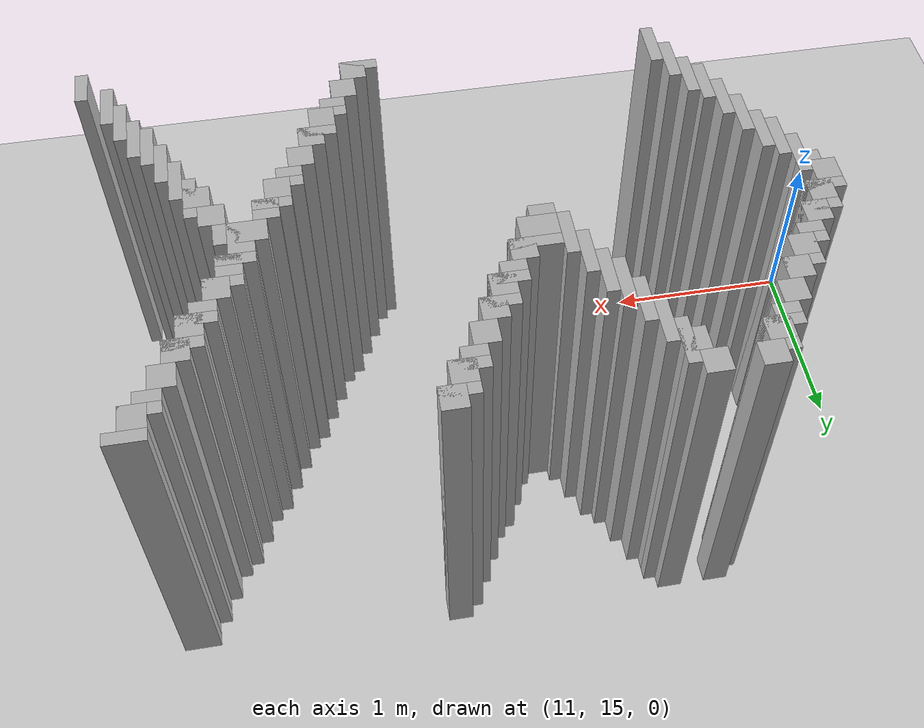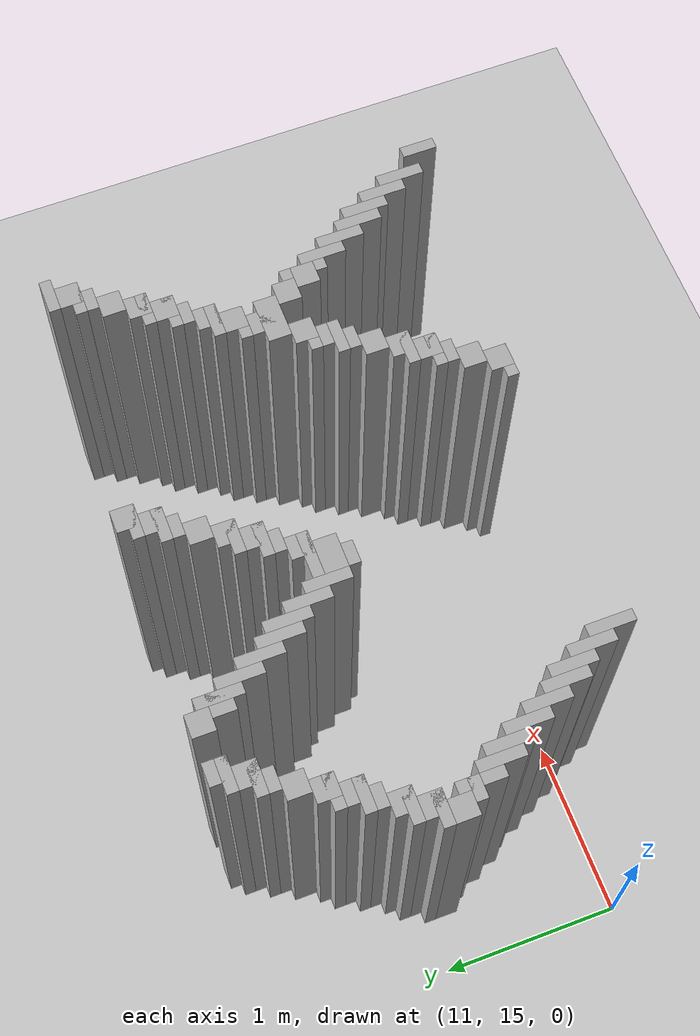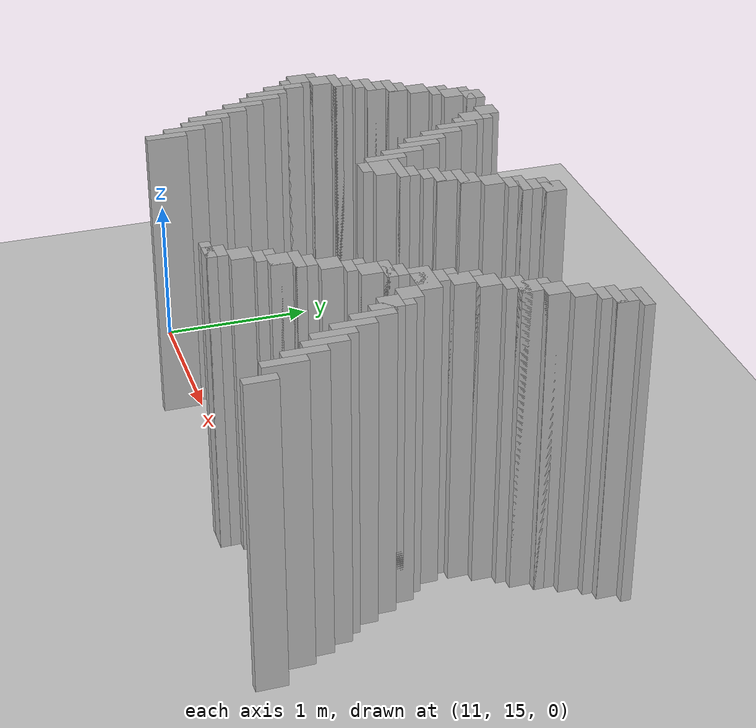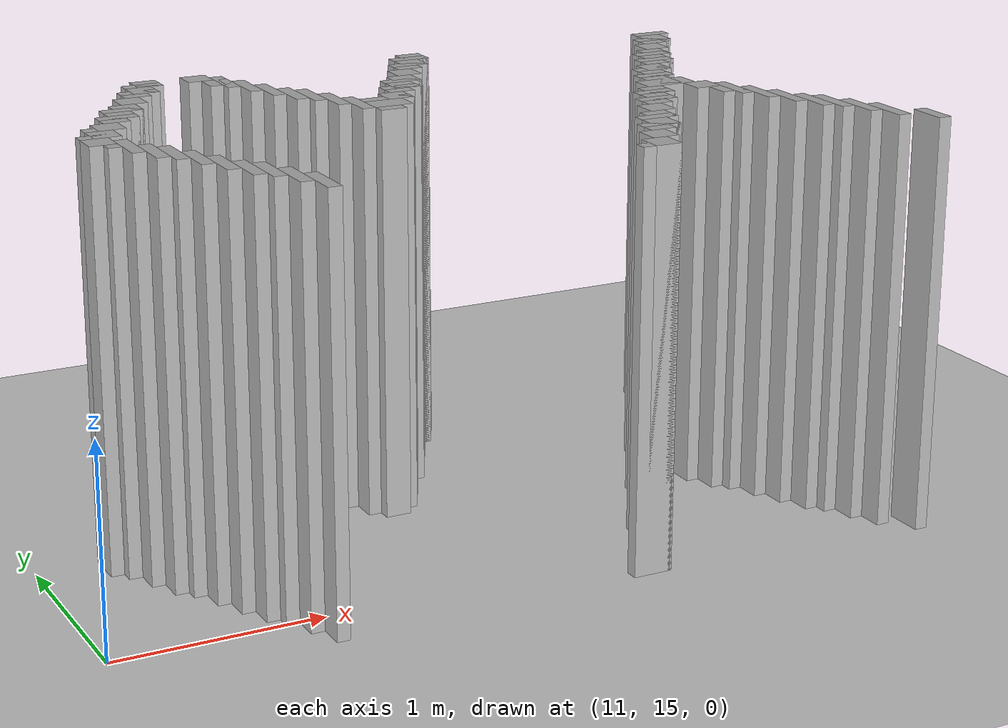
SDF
<sdf version="1.6">
 <world name="slam_world">
  <model name="ground_plane">
   <static>true</static>
   <link name="link">
    <collision name="collision">
     <geometry><plane><normal>0 0 1</normal><size>100 100</size></plane></geometry>
    </collision>
    <visual name="visual">
     <geometry><plane><normal>0 0 1</normal><size>100 100</size></plane></geometry>
     <material>
      <ambient>0.8 0.8 0.8 1</ambient>
      <diffuse>0.8 0.8 0.8 1</diffuse>
      <specular>0.8 0.8 0.8 1</specular>
     </material>
    </visual>
   </link>
  </model>
  <model name="wall_692">
   <static>true</static>
   <pose>11.936170212765957 16.914893617021274 1.0 0 0 0</pose>
   <link name="link">
    <collision name="collision">
     <geometry><box><size>0.1276595744680851 0.1276595744680851 2.0</size></box></geometry>
    </collision>
    <visual name="visual">
     <geometry><box><size>0.1276595744680851 0.1276595744680851 2.0</size></box></geometry>
     <material><ambient>0.5 0.5 0.5 1</ambient><diffuse>0.7 0.7 0.7 1</diffuse></material>
    </visual>
   </link>
  </model>
  <model name="wall_693">
   <static>true</static>
   <pose>12.191489361702127 16.914893617021274 1.0 0 0 0</pose>
   <link name="link">
    <collision name="collision">
     <geometry><box><size>0.1276595744680851 0.1276595744680851 2.0</size></box></geometry>
    </collision>
    <visual name="visual">
     <geometry><box><size>0.1276595744680851 0.1276595744680851 2.0</size></box></geometry>
     <material><ambient>0.5 0.5 0.5 1</ambient><diffuse>0.7 0.7 0.7 1</diffuse></material>
    </visual>
   </link>
  </model>
  <model name="wall_694">
   <static>true</static>
   <pose>13.340425531914892 16.914893617021274 1.0 0 0 0</pose>
   <link name="link">
    <collision name="collision">
     <geometry><box><size>0.1276595744680851 0.1276595744680851 2.0</size></box></geometry>
    </collision>
    <visual name="visual">
     <geometry><box><size>0.1276595744680851 0.1276595744680851 2.0</size></box></geometry>
     <material><ambient>0.5 0.5 0.5 1</ambient><diffuse>0.7 0.7 0.7 1</diffuse></material>
    </visual>
   </link>
  </model>
  <model name="wall_702">
   <static>true</static>
   <pose>11.904255319148936 16.882978723404253 1.0 0 0 0</pose>
   <link name="link">
    <collision name="collision">
     <geometry><box><size>0.19148936170212766 0.06382978723404255 2.0</size></box></geometry>
    </collision>
    <visual name="visual">
     <geometry><box><size>0.19148936170212766 0.06382978723404255 2.0</size></box></geometry>
     <material><ambient>0.5 0.5 0.5 1</ambient><diffuse>0.7 0.7 0.7 1</diffuse></material>
    </visual>
   </link>
  </model>
  <model name="wall_703">
   <static>true</static>
   <pose>12.287234042553191 16.78723404255319 1.0 0 0 0</pose>
   <link name="link">
    <collision name="collision">
     <geometry><box><size>0.06382978723404255 0.2553191489361702 2.0</size></box></geometry>
    </collision>
    <visual name="visual">
     <geometry><box><size>0.06382978723404255 0.2553191489361702 2.0</size></box></geometry>
     <material><ambient>0.5 0.5 0.5 1</ambient><diffuse>0.7 0.7 0.7 1</diffuse></material>
    </visual>
   </link>
  </model>
  <model name="wall_704">
   <static>true</static>
   <pose>13.308510638297872 16.882978723404253 1.0 0 0 0</pose>
   <link name="link">
    <collision name="collision">
     <geometry><box><size>0.19148936170212766 0.06382978723404255 2.0</size></box></geometry>
    </collision>
    <visual name="visual">
     <geometry><box><size>0.19148936170212766 0.06382978723404255 2.0</size></box></geometry>
     <material><ambient>0.5 0.5 0.5 1</ambient><diffuse>0.7 0.7 0.7 1</diffuse></material>
    </visual>
   </link>
  </model>
  <model name="wall_705">
   <static>true</static>
   <pose>14.712765957446807 16.882978723404253 1.0 0 0 0</pose>
   <link name="link">
    <collision name="collision">
     <geometry><box><size>0.19148936170212766 0.06382978723404255 2.0</size></box></geometry>
    </collision>
    <visual name="visual">
     <geometry><box><size>0.19148936170212766 0.06382978723404255 2.0</size></box></geometry>
     <material><ambient>0.5 0.5 0.5 1</ambient><diffuse>0.7 0.7 0.7 1</diffuse></material>
    </visual>
   </link>
  </model>
  <model name="wall_712">
   <static>true</static>
   <pose>11.872340425531913 16.78723404255319 1.0 0 0 0</pose>
   <link name="link">
    <collision name="collision">
     <geometry><box><size>0.1276595744680851 0.1276595744680851 2.0</size></box></geometry>
    </collision>
    <visual name="visual">
     <geometry><box><size>0.1276595744680851 0.1276595744680851 2.0</size></box></geometry>
     <material><ambient>0.5 0.5 0.5 1</ambient><diffuse>0.7 0.7 0.7 1</diffuse></material>
    </visual>
   </link>
  </model>
  <model name="wall_713">
   <static>true</static>
   <pose>12.25531914893617 16.78723404255319 1.0 0 0 0</pose>
   <link name="link">
    <collision name="collision">
     <geometry><box><size>0.1276595744680851 0.1276595744680851 2.0</size></box></geometry>
    </collision>
    <visual name="visual">
     <geometry><box><size>0.1276595744680851 0.1276595744680851 2.0</size></box></geometry>
     <material><ambient>0.5 0.5 0.5 1</ambient><diffuse>0.7 0.7 0.7 1</diffuse></material>
    </visual>
   </link>
  </model>
  <model name="wall_714">
   <static>true</static>
   <pose>13.27659574468085 16.78723404255319 1.0 0 0 0</pose>
   <link name="link">
    <collision name="collision">
     <geometry><box><size>0.1276595744680851 0.1276595744680851 2.0</size></box></geometry>
    </collision>
    <visual name="visual">
     <geometry><box><size>0.1276595744680851 0.1276595744680851 2.0</size></box></geometry>
     <material><ambient>0.5 0.5 0.5 1</ambient><diffuse>0.7 0.7 0.7 1</diffuse></material>
    </visual>
   </link>
  </model>
  <model name="wall_715">
   <static>true</static>
   <pose>14.680851063829786 16.78723404255319 1.0 0 0 0</pose>
   <link name="link">
    <collision name="collision">
     <geometry><box><size>0.1276595744680851 0.1276595744680851 2.0</size></box></geometry>
    </collision>
    <visual name="visual">
     <geometry><box><size>0.1276595744680851 0.1276595744680851 2.0</size></box></geometry>
     <material><ambient>0.5 0.5 0.5 1</ambient><diffuse>0.7 0.7 0.7 1</diffuse></material>
    </visual>
   </link>
  </model>
  <model name="wall_722">
   <static>true</static>
   <pose>11.840425531914892 16.75531914893617 1.0 0 0 0</pose>
   <link name="link">
    <collision name="collision">
     <geometry><box><size>0.19148936170212766 0.06382978723404255 2.0</size></box></geometry>
    </collision>
    <visual name="visual">
     <geometry><box><size>0.19148936170212766 0.06382978723404255 2.0</size></box></geometry>
     <material><ambient>0.5 0.5 0.5 1</ambient><diffuse>0.7 0.7 0.7 1</diffuse></material>
    </visual>
   </link>
  </model>
  <model name="wall_723">
   <static>true</static>
   <pose>12.351063829787233 16.659574468085104 1.0 0 0 0</pose>
   <link name="link">
    <collision name="collision">
     <geometry><box><size>0.06382978723404255 0.2553191489361702 2.0</size></box></geometry>
    </collision>
    <visual name="visual">
     <geometry><box><size>0.06382978723404255 0.2553191489361702 2.0</size></box></geometry>
     <material><ambient>0.5 0.5 0.5 1</ambient><diffuse>0.7 0.7 0.7 1</diffuse></material>
    </visual>
   </link>
  </model>
  <model name="wall_724">
   <static>true</static>
   <pose>13.244680851063828 16.75531914893617 1.0 0 0 0</pose>
   <link name="link">
    <collision name="collision">
     <geometry><box><size>0.19148936170212766 0.06382978723404255 2.0</size></box></geometry>
    </collision>
    <visual name="visual">
     <geometry><box><size>0.19148936170212766 0.06382978723404255 2.0</size></box></geometry>
     <material><ambient>0.5 0.5 0.5 1</ambient><diffuse>0.7 0.7 0.7 1</diffuse></material>
    </visual>
   </link>
  </model>
  <model name="wall_725">
   <static>true</static>
   <pose>14.648936170212766 16.75531914893617 1.0 0 0 0</pose>
   <link name="link">
    <collision name="collision">
     <geometry><box><size>0.19148936170212766 0.06382978723404255 2.0</size></box></geometry>
    </collision>
    <visual name="visual">
     <geometry><box><size>0.19148936170212766 0.06382978723404255 2.0</size></box></geometry>
     <material><ambient>0.5 0.5 0.5 1</ambient><diffuse>0.7 0.7 0.7 1</diffuse></material>
    </visual>
   </link>
  </model>
  <model name="wall_729">
   <static>true</static>
   <pose>11.808510638297872 16.691489361702125 1.0 0 0 0</pose>
   <link name="link">
    <collision name="collision">
     <geometry><box><size>0.1276595744680851 0.06382978723404255 2.0</size></box></geometry>
    </collision>
    <visual name="visual">
     <geometry><box><size>0.1276595744680851 0.06382978723404255 2.0</size></box></geometry>
     <material><ambient>0.5 0.5 0.5 1</ambient><diffuse>0.7 0.7 0.7 1</diffuse></material>
    </visual>
   </link>
  </model>
  <model name="wall_730">
   <static>true</static>
   <pose>13.212765957446807 16.691489361702125 1.0 0 0 0</pose>
   <link name="link">
    <collision name="collision">
     <geometry><box><size>0.1276595744680851 0.06382978723404255 2.0</size></box></geometry>
    </collision>
    <visual name="visual">
     <geometry><box><size>0.1276595744680851 0.06382978723404255 2.0</size></box></geometry>
     <material><ambient>0.5 0.5 0.5 1</ambient><diffuse>0.7 0.7 0.7 1</diffuse></material>
    </visual>
   </link>
  </model>
  <model name="wall_731">
   <static>true</static>
   <pose>14.617021276595743 16.691489361702125 1.0 0 0 0</pose>
   <link name="link">
    <collision name="collision">
     <geometry><box><size>0.1276595744680851 0.06382978723404255 2.0</size></box></geometry>
    </collision>
    <visual name="visual">
     <geometry><box><size>0.1276595744680851 0.06382978723404255 2.0</size></box></geometry>
     <material><ambient>0.5 0.5 0.5 1</ambient><diffuse>0.7 0.7 0.7 1</diffuse></material>
    </visual>
   </link>
  </model>
  <model name="wall_738">
   <static>true</static>
   <pose>11.744680851063828 16.595744680851062 1.0 0 0 0</pose>
   <link name="link">
    <collision name="collision">
     <geometry><box><size>0.1276595744680851 0.1276595744680851 2.0</size></box></geometry>
    </collision>
    <visual name="visual">
     <geometry><box><size>0.1276595744680851 0.1276595744680851 2.0</size></box></geometry>
     <material><ambient>0.5 0.5 0.5 1</ambient><diffuse>0.7 0.7 0.7 1</diffuse></material>
    </visual>
   </link>
  </model>
  <model name="wall_739">
   <static>true</static>
   <pose>12.414893617021276 16.53191489361702 1.0 0 0 0</pose>
   <link name="link">
    <collision name="collision">
     <geometry><box><size>0.06382978723404255 0.2553191489361702 2.0</size></box></geometry>
    </collision>
    <visual name="visual">
     <geometry><box><size>0.06382978723404255 0.2553191489361702 2.0</size></box></geometry>
     <material><ambient>0.5 0.5 0.5 1</ambient><diffuse>0.7 0.7 0.7 1</diffuse></material>
    </visual>
   </link>
  </model>
  <model name="wall_740">
   <static>true</static>
   <pose>13.148936170212766 16.595744680851062 1.0 0 0 0</pose>
   <link name="link">
    <collision name="collision">
     <geometry><box><size>0.1276595744680851 0.1276595744680851 2.0</size></box></geometry>
    </collision>
    <visual name="visual">
     <geometry><box><size>0.1276595744680851 0.1276595744680851 2.0</size></box></geometry>
     <material><ambient>0.5 0.5 0.5 1</ambient><diffuse>0.7 0.7 0.7 1</diffuse></material>
    </visual>
   </link>
  </model>
  <model name="wall_741">
   <static>true</static>
   <pose>14.553191489361701 16.595744680851062 1.0 0 0 0</pose>
   <link name="link">
    <collision name="collision">
     <geometry><box><size>0.1276595744680851 0.1276595744680851 2.0</size></box></geometry>
    </collision>
    <visual name="visual">
     <geometry><box><size>0.1276595744680851 0.1276595744680851 2.0</size></box></geometry>
     <material><ambient>0.5 0.5 0.5 1</ambient><diffuse>0.7 0.7 0.7 1</diffuse></material>
    </visual>
   </link>
  </model>
  <model name="wall_748">
   <static>true</static>
   <pose>11.680851063829786 16.46808510638298 1.0 0 0 0</pose>
   <link name="link">
    <collision name="collision">
     <geometry><box><size>0.1276595744680851 0.1276595744680851 2.0</size></box></geometry>
    </collision>
    <visual name="visual">
     <geometry><box><size>0.1276595744680851 0.1276595744680851 2.0</size></box></geometry>
     <material><ambient>0.5 0.5 0.5 1</ambient><diffuse>0.7 0.7 0.7 1</diffuse></material>
    </visual>
   </link>
  </model>
  <model name="wall_749">
   <static>true</static>
   <pose>12.478723404255318 16.404255319148934 1.0 0 0 0</pose>
   <link name="link">
    <collision name="collision">
     <geometry><box><size>0.06382978723404255 0.2553191489361702 2.0</size></box></geometry>
    </collision>
    <visual name="visual">
     <geometry><box><size>0.06382978723404255 0.2553191489361702 2.0</size></box></geometry>
     <material><ambient>0.5 0.5 0.5 1</ambient><diffuse>0.7 0.7 0.7 1</diffuse></material>
    </visual>
   </link>
  </model>
  <model name="wall_750">
   <static>true</static>
   <pose>13.085106382978722 16.46808510638298 1.0 0 0 0</pose>
   <link name="link">
    <collision name="collision">
     <geometry><box><size>0.1276595744680851 0.1276595744680851 2.0</size></box></geometry>
    </collision>
    <visual name="visual">
     <geometry><box><size>0.1276595744680851 0.1276595744680851 2.0</size></box></geometry>
     <material><ambient>0.5 0.5 0.5 1</ambient><diffuse>0.7 0.7 0.7 1</diffuse></material>
    </visual>
   </link>
  </model>
  <model name="wall_751">
   <static>true</static>
   <pose>14.489361702127658 16.46808510638298 1.0 0 0 0</pose>
   <link name="link">
    <collision name="collision">
     <geometry><box><size>0.1276595744680851 0.1276595744680851 2.0</size></box></geometry>
    </collision>
    <visual name="visual">
     <geometry><box><size>0.1276595744680851 0.1276595744680851 2.0</size></box></geometry>
     <material><ambient>0.5 0.5 0.5 1</ambient><diffuse>0.7 0.7 0.7 1</diffuse></material>
    </visual>
   </link>
  </model>
  <model name="wall_758">
   <static>true</static>
   <pose>11.648936170212766 16.436170212765955 1.0 0 0 0</pose>
   <link name="link">
    <collision name="collision">
     <geometry><box><size>0.19148936170212766 0.06382978723404255 2.0</size></box></geometry>
    </collision>
    <visual name="visual">
     <geometry><box><size>0.19148936170212766 0.06382978723404255 2.0</size></box></geometry>
     <material><ambient>0.5 0.5 0.5 1</ambient><diffuse>0.7 0.7 0.7 1</diffuse></material>
    </visual>
   </link>
  </model>
  <model name="wall_759">
   <static>true</static>
   <pose>12.542553191489361 16.340425531914892 1.0 0 0 0</pose>
   <link name="link">
    <collision name="collision">
     <geometry><box><size>0.06382978723404255 0.2553191489361702 2.0</size></box></geometry>
    </collision>
    <visual name="visual">
     <geometry><box><size>0.06382978723404255 0.2553191489361702 2.0</size></box></geometry>
     <material><ambient>0.5 0.5 0.5 1</ambient><diffuse>0.7 0.7 0.7 1</diffuse></material>
    </visual>
   </link>
  </model>
  <model name="wall_760">
   <static>true</static>
   <pose>13.053191489361701 16.436170212765955 1.0 0 0 0</pose>
   <link name="link">
    <collision name="collision">
     <geometry><box><size>0.19148936170212766 0.06382978723404255 2.0</size></box></geometry>
    </collision>
    <visual name="visual">
     <geometry><box><size>0.19148936170212766 0.06382978723404255 2.0</size></box></geometry>
     <material><ambient>0.5 0.5 0.5 1</ambient><diffuse>0.7 0.7 0.7 1</diffuse></material>
    </visual>
   </link>
  </model>
  <model name="wall_761">
   <static>true</static>
   <pose>14.457446808510637 16.436170212765955 1.0 0 0 0</pose>
   <link name="link">
    <collision name="collision">
     <geometry><box><size>0.19148936170212766 0.06382978723404255 2.0</size></box></geometry>
    </collision>
    <visual name="visual">
     <geometry><box><size>0.19148936170212766 0.06382978723404255 2.0</size></box></geometry>
     <material><ambient>0.5 0.5 0.5 1</ambient><diffuse>0.7 0.7 0.7 1</diffuse></material>
    </visual>
   </link>
  </model>
  <model name="wall_765">
   <static>true</static>
   <pose>11.617021276595743 16.340425531914892 1.0 0 0 0</pose>
   <link name="link">
    <collision name="collision">
     <geometry><box><size>0.1276595744680851 0.1276595744680851 2.0</size></box></geometry>
    </collision>
    <visual name="visual">
     <geometry><box><size>0.1276595744680851 0.1276595744680851 2.0</size></box></geometry>
     <material><ambient>0.5 0.5 0.5 1</ambient><diffuse>0.7 0.7 0.7 1</diffuse></material>
    </visual>
   </link>
  </model>
  <model name="wall_766">
   <static>true</static>
   <pose>13.02127659574468 16.340425531914892 1.0 0 0 0</pose>
   <link name="link">
    <collision name="collision">
     <geometry><box><size>0.1276595744680851 0.1276595744680851 2.0</size></box></geometry>
    </collision>
    <visual name="visual">
     <geometry><box><size>0.1276595744680851 0.1276595744680851 2.0</size></box></geometry>
     <material><ambient>0.5 0.5 0.5 1</ambient><diffuse>0.7 0.7 0.7 1</diffuse></material>
    </visual>
   </link>
  </model>
  <model name="wall_767">
   <static>true</static>
   <pose>14.425531914893616 16.340425531914892 1.0 0 0 0</pose>
   <link name="link">
    <collision name="collision">
     <geometry><box><size>0.1276595744680851 0.1276595744680851 2.0</size></box></geometry>
    </collision>
    <visual name="visual">
     <geometry><box><size>0.1276595744680851 0.1276595744680851 2.0</size></box></geometry>
     <material><ambient>0.5 0.5 0.5 1</ambient><diffuse>0.7 0.7 0.7 1</diffuse></material>
    </visual>
   </link>
  </model>
  <model name="wall_774">
   <static>true</static>
   <pose>11.585106382978722 16.30851063829787 1.0 0 0 0</pose>
   <link name="link">
    <collision name="collision">
     <geometry><box><size>0.19148936170212766 0.06382978723404255 2.0</size></box></geometry>
    </collision>
    <visual name="visual">
     <geometry><box><size>0.19148936170212766 0.06382978723404255 2.0</size></box></geometry>
     <material><ambient>0.5 0.5 0.5 1</ambient><diffuse>0.7 0.7 0.7 1</diffuse></material>
    </visual>
   </link>
  </model>
  <model name="wall_775">
   <static>true</static>
   <pose>12.606382978723403 16.212765957446805 1.0 0 0 0</pose>
   <link name="link">
    <collision name="collision">
     <geometry><box><size>0.06382978723404255 0.2553191489361702 2.0</size></box></geometry>
    </collision>
    <visual name="visual">
     <geometry><box><size>0.06382978723404255 0.2553191489361702 2.0</size></box></geometry>
     <material><ambient>0.5 0.5 0.5 1</ambient><diffuse>0.7 0.7 0.7 1</diffuse></material>
    </visual>
   </link>
  </model>
  <model name="wall_776">
   <static>true</static>
   <pose>12.989361702127658 16.30851063829787 1.0 0 0 0</pose>
   <link name="link">
    <collision name="collision">
     <geometry><box><size>0.19148936170212766 0.06382978723404255 2.0</size></box></geometry>
    </collision>
    <visual name="visual">
     <geometry><box><size>0.19148936170212766 0.06382978723404255 2.0</size></box></geometry>
     <material><ambient>0.5 0.5 0.5 1</ambient><diffuse>0.7 0.7 0.7 1</diffuse></material>
    </visual>
   </link>
  </model>
  <model name="wall_777">
   <static>true</static>
   <pose>14.393617021276595 16.30851063829787 1.0 0 0 0</pose>
   <link name="link">
    <collision name="collision">
     <geometry><box><size>0.19148936170212766 0.06382978723404255 2.0</size></box></geometry>
    </collision>
    <visual name="visual">
     <geometry><box><size>0.19148936170212766 0.06382978723404255 2.0</size></box></geometry>
     <material><ambient>0.5 0.5 0.5 1</ambient><diffuse>0.7 0.7 0.7 1</diffuse></material>
    </visual>
   </link>
  </model>
  <model name="wall_781">
   <static>true</static>
   <pose>11.553191489361701 16.24468085106383 1.0 0 0 0</pose>
   <link name="link">
    <collision name="collision">
     <geometry><box><size>0.1276595744680851 0.06382978723404255 2.0</size></box></geometry>
    </collision>
    <visual name="visual">
     <geometry><box><size>0.1276595744680851 0.06382978723404255 2.0</size></box></geometry>
     <material><ambient>0.5 0.5 0.5 1</ambient><diffuse>0.7 0.7 0.7 1</diffuse></material>
    </visual>
   </link>
  </model>
  <model name="wall_782">
   <static>true</static>
   <pose>12.957446808510637 16.24468085106383 1.0 0 0 0</pose>
   <link name="link">
    <collision name="collision">
     <geometry><box><size>0.1276595744680851 0.06382978723404255 2.0</size></box></geometry>
    </collision>
    <visual name="visual">
     <geometry><box><size>0.1276595744680851 0.06382978723404255 2.0</size></box></geometry>
     <material><ambient>0.5 0.5 0.5 1</ambient><diffuse>0.7 0.7 0.7 1</diffuse></material>
    </visual>
   </link>
  </model>
  <model name="wall_783">
   <static>true</static>
   <pose>14.361702127659573 16.24468085106383 1.0 0 0 0</pose>
   <link name="link">
    <collision name="collision">
     <geometry><box><size>0.1276595744680851 0.06382978723404255 2.0</size></box></geometry>
    </collision>
    <visual name="visual">
     <geometry><box><size>0.1276595744680851 0.06382978723404255 2.0</size></box></geometry>
     <material><ambient>0.5 0.5 0.5 1</ambient><diffuse>0.7 0.7 0.7 1</diffuse></material>
    </visual>
   </link>
  </model>
  <model name="wall_790">
   <static>true</static>
   <pose>11.489361702127658 16.148936170212764 1.0 0 0 0</pose>
   <link name="link">
    <collision name="collision">
     <geometry><box><size>0.1276595744680851 0.1276595744680851 2.0</size></box></geometry>
    </collision>
    <visual name="visual">
     <geometry><box><size>0.1276595744680851 0.1276595744680851 2.0</size></box></geometry>
     <material><ambient>0.5 0.5 0.5 1</ambient><diffuse>0.7 0.7 0.7 1</diffuse></material>
    </visual>
   </link>
  </model>
  <model name="wall_791">
   <static>true</static>
   <pose>12.670212765957446 16.085106382978722 1.0 0 0 0</pose>
   <link name="link">
    <collision name="collision">
     <geometry><box><size>0.06382978723404255 0.2553191489361702 2.0</size></box></geometry>
    </collision>
    <visual name="visual">
     <geometry><box><size>0.06382978723404255 0.2553191489361702 2.0</size></box></geometry>
     <material><ambient>0.5 0.5 0.5 1</ambient><diffuse>0.7 0.7 0.7 1</diffuse></material>
    </visual>
   </link>
  </model>
  <model name="wall_792">
   <static>true</static>
   <pose>12.893617021276595 16.148936170212764 1.0 0 0 0</pose>
   <link name="link">
    <collision name="collision">
     <geometry><box><size>0.1276595744680851 0.1276595744680851 2.0</size></box></geometry>
    </collision>
    <visual name="visual">
     <geometry><box><size>0.1276595744680851 0.1276595744680851 2.0</size></box></geometry>
     <material><ambient>0.5 0.5 0.5 1</ambient><diffuse>0.7 0.7 0.7 1</diffuse></material>
    </visual>
   </link>
  </model>
  <model name="wall_793">
   <static>true</static>
   <pose>14.297872340425531 16.148936170212764 1.0 0 0 0</pose>
   <link name="link">
    <collision name="collision">
     <geometry><box><size>0.1276595744680851 0.1276595744680851 2.0</size></box></geometry>
    </collision>
    <visual name="visual">
     <geometry><box><size>0.1276595744680851 0.1276595744680851 2.0</size></box></geometry>
     <material><ambient>0.5 0.5 0.5 1</ambient><diffuse>0.7 0.7 0.7 1</diffuse></material>
    </visual>
   </link>
  </model>
  <model name="wall_800">
   <static>true</static>
   <pose>11.457446808510637 16.117021276595743 1.0 0 0 0</pose>
   <link name="link">
    <collision name="collision">
     <geometry><box><size>0.19148936170212766 0.06382978723404255 2.0</size></box></geometry>
    </collision>
    <visual name="visual">
     <geometry><box><size>0.19148936170212766 0.06382978723404255 2.0</size></box></geometry>
     <material><ambient>0.5 0.5 0.5 1</ambient><diffuse>0.7 0.7 0.7 1</diffuse></material>
    </visual>
   </link>
  </model>
  <model name="wall_801">
   <static>true</static>
   <pose>12.829787234042552 16.117021276595743 1.0 0 0 0</pose>
   <link name="link">
    <collision name="collision">
     <geometry><box><size>0.2553191489361702 0.06382978723404255 2.0</size></box></geometry>
    </collision>
    <visual name="visual">
     <geometry><box><size>0.2553191489361702 0.06382978723404255 2.0</size></box></geometry>
     <material><ambient>0.5 0.5 0.5 1</ambient><diffuse>0.7 0.7 0.7 1</diffuse></material>
    </visual>
   </link>
  </model>
  <model name="wall_802">
   <static>true</static>
   <pose>14.265957446808509 16.117021276595743 1.0 0 0 0</pose>
   <link name="link">
    <collision name="collision">
     <geometry><box><size>0.19148936170212766 0.06382978723404255 2.0</size></box></geometry>
    </collision>
    <visual name="visual">
     <geometry><box><size>0.19148936170212766 0.06382978723404255 2.0</size></box></geometry>
     <material><ambient>0.5 0.5 0.5 1</ambient><diffuse>0.7 0.7 0.7 1</diffuse></material>
    </visual>
   </link>
  </model>
  <model name="wall_806">
   <static>true</static>
   <pose>11.425531914893616 16.02127659574468 1.0 0 0 0</pose>
   <link name="link">
    <collision name="collision">
     <geometry><box><size>0.1276595744680851 0.1276595744680851 2.0</size></box></geometry>
    </collision>
    <visual name="visual">
     <geometry><box><size>0.1276595744680851 0.1276595744680851 2.0</size></box></geometry>
     <material><ambient>0.5 0.5 0.5 1</ambient><diffuse>0.7 0.7 0.7 1</diffuse></material>
    </visual>
   </link>
  </model>
  <model name="wall_807">
   <static>true</static>
   <pose>12.797872340425531 16.02127659574468 1.0 0 0 0</pose>
   <link name="link">
    <collision name="collision">
     <geometry><box><size>0.19148936170212766 0.1276595744680851 2.0</size></box></geometry>
    </collision>
    <visual name="visual">
     <geometry><box><size>0.19148936170212766 0.1276595744680851 2.0</size></box></geometry>
     <material><ambient>0.5 0.5 0.5 1</ambient><diffuse>0.7 0.7 0.7 1</diffuse></material>
    </visual>
   </link>
  </model>
  <model name="wall_808">
   <static>true</static>
   <pose>14.234042553191488 16.02127659574468 1.0 0 0 0</pose>
   <link name="link">
    <collision name="collision">
     <geometry><box><size>0.1276595744680851 0.1276595744680851 2.0</size></box></geometry>
    </collision>
    <visual name="visual">
     <geometry><box><size>0.1276595744680851 0.1276595744680851 2.0</size></box></geometry>
     <material><ambient>0.5 0.5 0.5 1</ambient><diffuse>0.7 0.7 0.7 1</diffuse></material>
    </visual>
   </link>
  </model>
  <model name="wall_813">
   <static>true</static>
   <pose>11.393617021276595 15.989361702127658 1.0 0 0 0</pose>
   <link name="link">
    <collision name="collision">
     <geometry><box><size>0.19148936170212766 0.06382978723404255 2.0</size></box></geometry>
    </collision>
    <visual name="visual">
     <geometry><box><size>0.19148936170212766 0.06382978723404255 2.0</size></box></geometry>
     <material><ambient>0.5 0.5 0.5 1</ambient><diffuse>0.7 0.7 0.7 1</diffuse></material>
    </visual>
   </link>
  </model>
  <model name="wall_814">
   <static>true</static>
   <pose>14.202127659574467 15.989361702127658 1.0 0 0 0</pose>
   <link name="link">
    <collision name="collision">
     <geometry><box><size>0.19148936170212766 0.06382978723404255 2.0</size></box></geometry>
    </collision>
    <visual name="visual">
     <geometry><box><size>0.19148936170212766 0.06382978723404255 2.0</size></box></geometry>
     <material><ambient>0.5 0.5 0.5 1</ambient><diffuse>0.7 0.7 0.7 1</diffuse></material>
    </visual>
   </link>
  </model>
  <model name="wall_819">
   <static>true</static>
   <pose>11.361702127659573 15.893617021276594 1.0 0 0 0</pose>
   <link name="link">
    <collision name="collision">
     <geometry><box><size>0.1276595744680851 0.1276595744680851 2.0</size></box></geometry>
    </collision>
    <visual name="visual">
     <geometry><box><size>0.1276595744680851 0.1276595744680851 2.0</size></box></geometry>
     <material><ambient>0.5 0.5 0.5 1</ambient><diffuse>0.7 0.7 0.7 1</diffuse></material>
    </visual>
   </link>
  </model>
  <model name="wall_820">
   <static>true</static>
   <pose>12.76595744680851 15.925531914893616 1.0 0 0 0</pose>
   <link name="link">
    <collision name="collision">
     <geometry><box><size>0.1276595744680851 0.06382978723404255 2.0</size></box></geometry>
    </collision>
    <visual name="visual">
     <geometry><box><size>0.1276595744680851 0.06382978723404255 2.0</size></box></geometry>
     <material><ambient>0.5 0.5 0.5 1</ambient><diffuse>0.7 0.7 0.7 1</diffuse></material>
    </visual>
   </link>
  </model>
  <model name="wall_821">
   <static>true</static>
   <pose>14.170212765957446 15.861702127659573 1.0 0 0 0</pose>
   <link name="link">
    <collision name="collision">
     <geometry><box><size>0.1276595744680851 0.19148936170212766 2.0</size></box></geometry>
    </collision>
    <visual name="visual">
     <geometry><box><size>0.1276595744680851 0.19148936170212766 2.0</size></box></geometry>
     <material><ambient>0.5 0.5 0.5 1</ambient><diffuse>0.7 0.7 0.7 1</diffuse></material>
    </visual>
   </link>
  </model>
  <model name="wall_828">
   <static>true</static>
   <pose>11.457446808510637 15.765957446808509 1.0 0 0 0</pose>
   <link name="link">
    <collision name="collision">
     <geometry><box><size>0.06382978723404255 0.2553191489361702 2.0</size></box></geometry>
    </collision>
    <visual name="visual">
     <geometry><box><size>0.06382978723404255 0.2553191489361702 2.0</size></box></geometry>
     <material><ambient>0.5 0.5 0.5 1</ambient><diffuse>0.7 0.7 0.7 1</diffuse></material>
    </visual>
   </link>
  </model>
  <model name="wall_829">
   <static>true</static>
   <pose>14.170212765957446 15.829787234042552 1.0 0 0 0</pose>
   <link name="link">
    <collision name="collision">
     <geometry><box><size>0.2553191489361702 0.1276595744680851 2.0</size></box></geometry>
    </collision>
    <visual name="visual">
     <geometry><box><size>0.2553191489361702 0.1276595744680851 2.0</size></box></geometry>
     <material><ambient>0.5 0.5 0.5 1</ambient><diffuse>0.7 0.7 0.7 1</diffuse></material>
    </visual>
   </link>
  </model>
  <model name="wall_831">
   <static>true</static>
   <pose>11.425531914893616 15.797872340425531 1.0 0 0 0</pose>
   <link name="link">
    <collision name="collision">
     <geometry><box><size>0.1276595744680851 0.06382978723404255 2.0</size></box></geometry>
    </collision>
    <visual name="visual">
     <geometry><box><size>0.1276595744680851 0.06382978723404255 2.0</size></box></geometry>
     <material><ambient>0.5 0.5 0.5 1</ambient><diffuse>0.7 0.7 0.7 1</diffuse></material>
    </visual>
   </link>
  </model>
  <model name="wall_835">
   <static>true</static>
   <pose>11.52127659574468 15.638297872340424 1.0 0 0 0</pose>
   <link name="link">
    <collision name="collision">
     <geometry><box><size>0.06382978723404255 0.2553191489361702 2.0</size></box></geometry>
    </collision>
    <visual name="visual">
     <geometry><box><size>0.06382978723404255 0.2553191489361702 2.0</size></box></geometry>
     <material><ambient>0.5 0.5 0.5 1</ambient><diffuse>0.7 0.7 0.7 1</diffuse></material>
    </visual>
   </link>
  </model>
  <model name="wall_836">
   <static>true</static>
   <pose>14.042553191489361 15.702127659574467 1.0 0 0 0</pose>
   <link name="link">
    <collision name="collision">
     <geometry><box><size>0.1276595744680851 0.1276595744680851 2.0</size></box></geometry>
    </collision>
    <visual name="visual">
     <geometry><box><size>0.1276595744680851 0.1276595744680851 2.0</size></box></geometry>
     <material><ambient>0.5 0.5 0.5 1</ambient><diffuse>0.7 0.7 0.7 1</diffuse></material>
    </visual>
   </link>
  </model>
  <model name="wall_837">
   <static>true</static>
   <pose>14.297872340425531 15.702127659574467 1.0 0 0 0</pose>
   <link name="link">
    <collision name="collision">
     <geometry><box><size>0.1276595744680851 0.1276595744680851 2.0</size></box></geometry>
    </collision>
    <visual name="visual">
     <geometry><box><size>0.1276595744680851 0.1276595744680851 2.0</size></box></geometry>
     <material><ambient>0.5 0.5 0.5 1</ambient><diffuse>0.7 0.7 0.7 1</diffuse></material>
    </visual>
   </link>
  </model>
  <model name="wall_841">
   <static>true</static>
   <pose>11.585106382978722 15.574468085106382 1.0 0 0 0</pose>
   <link name="link">
    <collision name="collision">
     <geometry><box><size>0.06382978723404255 0.2553191489361702 2.0</size></box></geometry>
    </collision>
    <visual name="visual">
     <geometry><box><size>0.06382978723404255 0.2553191489361702 2.0</size></box></geometry>
     <material><ambient>0.5 0.5 0.5 1</ambient><diffuse>0.7 0.7 0.7 1</diffuse></material>
    </visual>
   </link>
  </model>
  <model name="wall_842">
   <static>true</static>
   <pose>14.010638297872338 15.670212765957446 1.0 0 0 0</pose>
   <link name="link">
    <collision name="collision">
     <geometry><box><size>0.19148936170212766 0.06382978723404255 2.0</size></box></geometry>
    </collision>
    <visual name="visual">
     <geometry><box><size>0.19148936170212766 0.06382978723404255 2.0</size></box></geometry>
     <material><ambient>0.5 0.5 0.5 1</ambient><diffuse>0.7 0.7 0.7 1</diffuse></material>
    </visual>
   </link>
  </model>
  <model name="wall_843">
   <static>true</static>
   <pose>14.393617021276595 15.574468085106382 1.0 0 0 0</pose>
   <link name="link">
    <collision name="collision">
     <geometry><box><size>0.06382978723404255 0.2553191489361702 2.0</size></box></geometry>
    </collision>
    <visual name="visual">
     <geometry><box><size>0.06382978723404255 0.2553191489361702 2.0</size></box></geometry>
     <material><ambient>0.5 0.5 0.5 1</ambient><diffuse>0.7 0.7 0.7 1</diffuse></material>
    </visual>
   </link>
  </model>
  <model name="wall_846">
   <static>true</static>
   <pose>13.978723404255318 15.574468085106382 1.0 0 0 0</pose>
   <link name="link">
    <collision name="collision">
     <geometry><box><size>0.1276595744680851 0.1276595744680851 2.0</size></box></geometry>
    </collision>
    <visual name="visual">
     <geometry><box><size>0.1276595744680851 0.1276595744680851 2.0</size></box></geometry>
     <material><ambient>0.5 0.5 0.5 1</ambient><diffuse>0.7 0.7 0.7 1</diffuse></material>
    </visual>
   </link>
  </model>
  <model name="wall_847">
   <static>true</static>
   <pose>14.361702127659573 15.574468085106382 1.0 0 0 0</pose>
   <link name="link">
    <collision name="collision">
     <geometry><box><size>0.1276595744680851 0.1276595744680851 2.0</size></box></geometry>
    </collision>
    <visual name="visual">
     <geometry><box><size>0.1276595744680851 0.1276595744680851 2.0</size></box></geometry>
     <material><ambient>0.5 0.5 0.5 1</ambient><diffuse>0.7 0.7 0.7 1</diffuse></material>
    </visual>
   </link>
  </model>
  <model name="wall_851">
   <static>true</static>
   <pose>11.648936170212766 15.446808510638297 1.0 0 0 0</pose>
   <link name="link">
    <collision name="collision">
     <geometry><box><size>0.06382978723404255 0.2553191489361702 2.0</size></box></geometry>
    </collision>
    <visual name="visual">
     <geometry><box><size>0.06382978723404255 0.2553191489361702 2.0</size></box></geometry>
     <material><ambient>0.5 0.5 0.5 1</ambient><diffuse>0.7 0.7 0.7 1</diffuse></material>
    </visual>
   </link>
  </model>
  <model name="wall_852">
   <static>true</static>
   <pose>13.946808510638297 15.542553191489361 1.0 0 0 0</pose>
   <link name="link">
    <collision name="collision">
     <geometry><box><size>0.19148936170212766 0.06382978723404255 2.0</size></box></geometry>
    </collision>
    <visual name="visual">
     <geometry><box><size>0.19148936170212766 0.06382978723404255 2.0</size></box></geometry>
     <material><ambient>0.5 0.5 0.5 1</ambient><diffuse>0.7 0.7 0.7 1</diffuse></material>
    </visual>
   </link>
  </model>
  <model name="wall_853">
   <static>true</static>
   <pose>14.457446808510637 15.446808510638297 1.0 0 0 0</pose>
   <link name="link">
    <collision name="collision">
     <geometry><box><size>0.06382978723404255 0.2553191489361702 2.0</size></box></geometry>
    </collision>
    <visual name="visual">
     <geometry><box><size>0.06382978723404255 0.2553191489361702 2.0</size></box></geometry>
     <material><ambient>0.5 0.5 0.5 1</ambient><diffuse>0.7 0.7 0.7 1</diffuse></material>
    </visual>
   </link>
  </model>
  <model name="wall_854">
   <static>true</static>
   <pose>13.914893617021276 15.478723404255318 1.0 0 0 0</pose>
   <link name="link">
    <collision name="collision">
     <geometry><box><size>0.1276595744680851 0.06382978723404255 2.0</size></box></geometry>
    </collision>
    <visual name="visual">
     <geometry><box><size>0.1276595744680851 0.06382978723404255 2.0</size></box></geometry>
     <material><ambient>0.5 0.5 0.5 1</ambient><diffuse>0.7 0.7 0.7 1</diffuse></material>
    </visual>
   </link>
  </model>
  <model name="wall_858">
   <static>true</static>
   <pose>11.712765957446807 15.319148936170212 1.0 0 0 0</pose>
   <link name="link">
    <collision name="collision">
     <geometry><box><size>0.06382978723404255 0.2553191489361702 2.0</size></box></geometry>
    </collision>
    <visual name="visual">
     <geometry><box><size>0.06382978723404255 0.2553191489361702 2.0</size></box></geometry>
     <material><ambient>0.5 0.5 0.5 1</ambient><diffuse>0.7 0.7 0.7 1</diffuse></material>
    </visual>
   </link>
  </model>
  <model name="wall_859">
   <static>true</static>
   <pose>13.851063829787233 15.382978723404253 1.0 0 0 0</pose>
   <link name="link">
    <collision name="collision">
     <geometry><box><size>0.1276595744680851 0.1276595744680851 2.0</size></box></geometry>
    </collision>
    <visual name="visual">
     <geometry><box><size>0.1276595744680851 0.1276595744680851 2.0</size></box></geometry>
     <material><ambient>0.5 0.5 0.5 1</ambient><diffuse>0.7 0.7 0.7 1</diffuse></material>
    </visual>
   </link>
  </model>
  <model name="wall_860">
   <static>true</static>
   <pose>14.52127659574468 15.319148936170212 1.0 0 0 0</pose>
   <link name="link">
    <collision name="collision">
     <geometry><box><size>0.06382978723404255 0.2553191489361702 2.0</size></box></geometry>
    </collision>
    <visual name="visual">
     <geometry><box><size>0.06382978723404255 0.2553191489361702 2.0</size></box></geometry>
     <material><ambient>0.5 0.5 0.5 1</ambient><diffuse>0.7 0.7 0.7 1</diffuse></material>
    </visual>
   </link>
  </model>
  <model name="wall_864">
   <static>true</static>
   <pose>11.77659574468085 15.191489361702127 1.0 0 0 0</pose>
   <link name="link">
    <collision name="collision">
     <geometry><box><size>0.06382978723404255 0.2553191489361702 2.0</size></box></geometry>
    </collision>
    <visual name="visual">
     <geometry><box><size>0.06382978723404255 0.2553191489361702 2.0</size></box></geometry>
     <material><ambient>0.5 0.5 0.5 1</ambient><diffuse>0.7 0.7 0.7 1</diffuse></material>
    </visual>
   </link>
  </model>
  <model name="wall_865">
   <static>true</static>
   <pose>13.787234042553191 15.255319148936168 1.0 0 0 0</pose>
   <link name="link">
    <collision name="collision">
     <geometry><box><size>0.1276595744680851 0.1276595744680851 2.0</size></box></geometry>
    </collision>
    <visual name="visual">
     <geometry><box><size>0.1276595744680851 0.1276595744680851 2.0</size></box></geometry>
     <material><ambient>0.5 0.5 0.5 1</ambient><diffuse>0.7 0.7 0.7 1</diffuse></material>
    </visual>
   </link>
  </model>
  <model name="wall_866">
   <static>true</static>
   <pose>14.585106382978722 15.191489361702127 1.0 0 0 0</pose>
   <link name="link">
    <collision name="collision">
     <geometry><box><size>0.06382978723404255 0.2553191489361702 2.0</size></box></geometry>
    </collision>
    <visual name="visual">
     <geometry><box><size>0.06382978723404255 0.2553191489361702 2.0</size></box></geometry>
     <material><ambient>0.5 0.5 0.5 1</ambient><diffuse>0.7 0.7 0.7 1</diffuse></material>
    </visual>
   </link>
  </model>
  <model name="wall_870">
   <static>true</static>
   <pose>11.840425531914892 15.127659574468083 1.0 0 0 0</pose>
   <link name="link">
    <collision name="collision">
     <geometry><box><size>0.06382978723404255 0.2553191489361702 2.0</size></box></geometry>
    </collision>
    <visual name="visual">
     <geometry><box><size>0.06382978723404255 0.2553191489361702 2.0</size></box></geometry>
     <material><ambient>0.5 0.5 0.5 1</ambient><diffuse>0.7 0.7 0.7 1</diffuse></material>
    </visual>
   </link>
  </model>
  <model name="wall_871">
   <static>true</static>
   <pose>13.755319148936168 15.223404255319148 1.0 0 0 0</pose>
   <link name="link">
    <collision name="collision">
     <geometry><box><size>0.19148936170212766 0.06382978723404255 2.0</size></box></geometry>
    </collision>
    <visual name="visual">
     <geometry><box><size>0.19148936170212766 0.06382978723404255 2.0</size></box></geometry>
     <material><ambient>0.5 0.5 0.5 1</ambient><diffuse>0.7 0.7 0.7 1</diffuse></material>
    </visual>
   </link>
  </model>
  <model name="wall_872">
   <static>true</static>
   <pose>14.648936170212766 15.127659574468083 1.0 0 0 0</pose>
   <link name="link">
    <collision name="collision">
     <geometry><box><size>0.06382978723404255 0.2553191489361702 2.0</size></box></geometry>
    </collision>
    <visual name="visual">
     <geometry><box><size>0.06382978723404255 0.2553191489361702 2.0</size></box></geometry>
     <material><ambient>0.5 0.5 0.5 1</ambient><diffuse>0.7 0.7 0.7 1</diffuse></material>
    </visual>
   </link>
  </model>
  <model name="wall_873">
   <static>true</static>
   <pose>13.723404255319148 15.127659574468083 1.0 0 0 0</pose>
   <link name="link">
    <collision name="collision">
     <geometry><box><size>0.1276595744680851 0.1276595744680851 2.0</size></box></geometry>
    </collision>
    <visual name="visual">
     <geometry><box><size>0.1276595744680851 0.1276595744680851 2.0</size></box></geometry>
     <material><ambient>0.5 0.5 0.5 1</ambient><diffuse>0.7 0.7 0.7 1</diffuse></material>
    </visual>
   </link>
  </model>
  <model name="wall_877">
   <static>true</static>
   <pose>11.904255319148936 14.999999999999998 1.0 0 0 0</pose>
   <link name="link">
    <collision name="collision">
     <geometry><box><size>0.06382978723404255 0.2553191489361702 2.0</size></box></geometry>
    </collision>
    <visual name="visual">
     <geometry><box><size>0.06382978723404255 0.2553191489361702 2.0</size></box></geometry>
     <material><ambient>0.5 0.5 0.5 1</ambient><diffuse>0.7 0.7 0.7 1</diffuse></material>
    </visual>
   </link>
  </model>
  <model name="wall_878">
   <static>true</static>
   <pose>13.691489361702127 15.095744680851062 1.0 0 0 0</pose>
   <link name="link">
    <collision name="collision">
     <geometry><box><size>0.19148936170212766 0.06382978723404255 2.0</size></box></geometry>
    </collision>
    <visual name="visual">
     <geometry><box><size>0.19148936170212766 0.06382978723404255 2.0</size></box></geometry>
     <material><ambient>0.5 0.5 0.5 1</ambient><diffuse>0.7 0.7 0.7 1</diffuse></material>
    </visual>
   </link>
  </model>
  <model name="wall_879">
   <static>true</static>
   <pose>14.712765957446807 14.999999999999998 1.0 0 0 0</pose>
   <link name="link">
    <collision name="collision">
     <geometry><box><size>0.06382978723404255 0.2553191489361702 2.0</size></box></geometry>
    </collision>
    <visual name="visual">
     <geometry><box><size>0.06382978723404255 0.2553191489361702 2.0</size></box></geometry>
     <material><ambient>0.5 0.5 0.5 1</ambient><diffuse>0.7 0.7 0.7 1</diffuse></material>
    </visual>
   </link>
  </model>
  <model name="wall_880">
   <static>true</static>
   <pose>13.659574468085106 15.03191489361702 1.0 0 0 0</pose>
   <link name="link">
    <collision name="collision">
     <geometry><box><size>0.1276595744680851 0.06382978723404255 2.0</size></box></geometry>
    </collision>
    <visual name="visual">
     <geometry><box><size>0.1276595744680851 0.06382978723404255 2.0</size></box></geometry>
     <material><ambient>0.5 0.5 0.5 1</ambient><diffuse>0.7 0.7 0.7 1</diffuse></material>
    </visual>
   </link>
  </model>
  <model name="wall_884">
   <static>true</static>
   <pose>11.968085106382977 14.872340425531913 1.0 0 0 0</pose>
   <link name="link">
    <collision name="collision">
     <geometry><box><size>0.06382978723404255 0.2553191489361702 2.0</size></box></geometry>
    </collision>
    <visual name="visual">
     <geometry><box><size>0.06382978723404255 0.2553191489361702 2.0</size></box></geometry>
     <material><ambient>0.5 0.5 0.5 1</ambient><diffuse>0.7 0.7 0.7 1</diffuse></material>
    </visual>
   </link>
  </model>
  <model name="wall_885">
   <static>true</static>
   <pose>13.595744680851062 14.936170212765957 1.0 0 0 0</pose>
   <link name="link">
    <collision name="collision">
     <geometry><box><size>0.1276595744680851 0.1276595744680851 2.0</size></box></geometry>
    </collision>
    <visual name="visual">
     <geometry><box><size>0.1276595744680851 0.1276595744680851 2.0</size></box></geometry>
     <material><ambient>0.5 0.5 0.5 1</ambient><diffuse>0.7 0.7 0.7 1</diffuse></material>
    </visual>
   </link>
  </model>
  <model name="wall_886">
   <static>true</static>
   <pose>14.77659574468085 14.872340425531913 1.0 0 0 0</pose>
   <link name="link">
    <collision name="collision">
     <geometry><box><size>0.06382978723404255 0.2553191489361702 2.0</size></box></geometry>
    </collision>
    <visual name="visual">
     <geometry><box><size>0.06382978723404255 0.2553191489361702 2.0</size></box></geometry>
     <material><ambient>0.5 0.5 0.5 1</ambient><diffuse>0.7 0.7 0.7 1</diffuse></material>
    </visual>
   </link>
  </model>
  <model name="wall_891">
   <static>true</static>
   <pose>13.53191489361702 14.808510638297872 1.0 0 0 0</pose>
   <link name="link">
    <collision name="collision">
     <geometry><box><size>0.1276595744680851 0.1276595744680851 2.0</size></box></geometry>
    </collision>
    <visual name="visual">
     <geometry><box><size>0.1276595744680851 0.1276595744680851 2.0</size></box></geometry>
     <material><ambient>0.5 0.5 0.5 1</ambient><diffuse>0.7 0.7 0.7 1</diffuse></material>
    </visual>
   </link>
  </model>
  <model name="wall_896">
   <static>true</static>
   <pose>13.499999999999998 14.77659574468085 1.0 0 0 0</pose>
   <link name="link">
    <collision name="collision">
     <geometry><box><size>0.19148936170212766 0.06382978723404255 2.0</size></box></geometry>
    </collision>
    <visual name="visual">
     <geometry><box><size>0.19148936170212766 0.06382978723404255 2.0</size></box></geometry>
     <material><ambient>0.5 0.5 0.5 1</ambient><diffuse>0.7 0.7 0.7 1</diffuse></material>
    </visual>
   </link>
  </model>
  <model name="wall_897">
   <static>true</static>
   <pose>14.904255319148936 14.712765957446807 1.0 0 0 0</pose>
   <link name="link">
    <collision name="collision">
     <geometry><box><size>0.06382978723404255 0.19148936170212766 2.0</size></box></geometry>
    </collision>
    <visual name="visual">
     <geometry><box><size>0.06382978723404255 0.19148936170212766 2.0</size></box></geometry>
     <material><ambient>0.5 0.5 0.5 1</ambient><diffuse>0.7 0.7 0.7 1</diffuse></material>
    </visual>
   </link>
  </model>
 </world>
</sdf>
